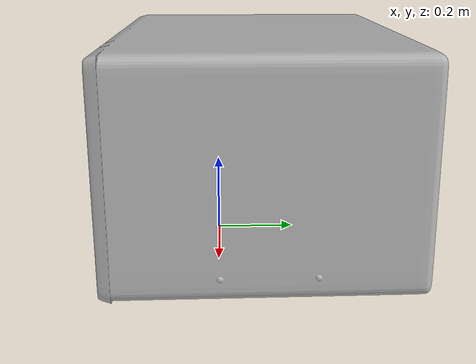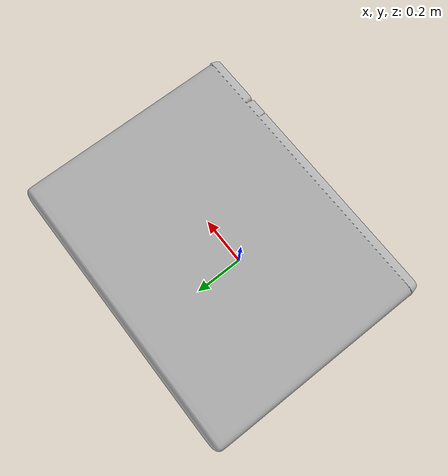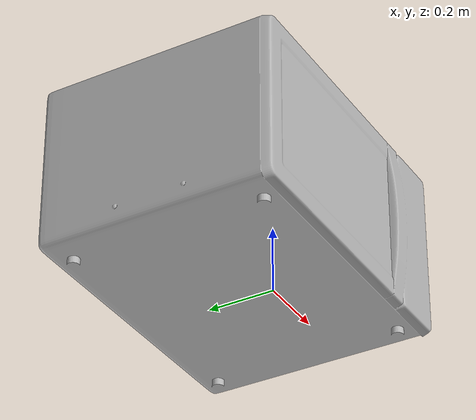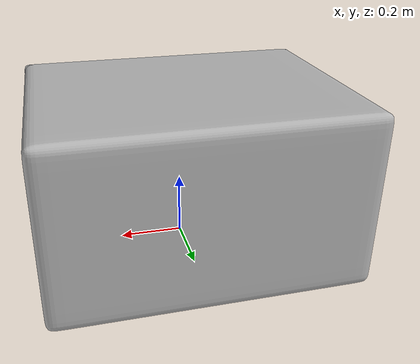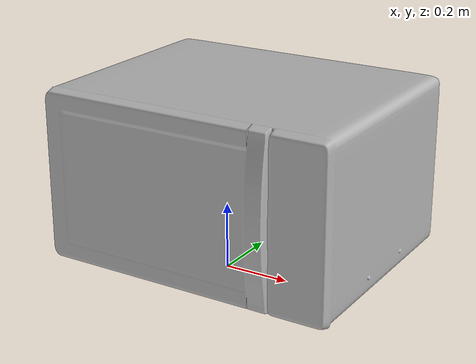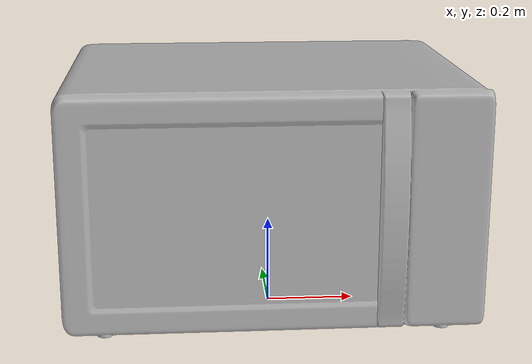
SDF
<?xml version="1.0" ?>
<sdf version="1.7">
  <model name="microwave">
    <static>true</static>
    <link name="microwavelink">
      <collision name="collision">
        <geometry>
          <mesh>
            <uri>model://microwave/meshes/microwave.obj</uri>
            <scale> 0.02 0.02 0.02 </scale>
          </mesh>
        </geometry>
      </collision>
      <visual name="visual">
        <geometry>
          <mesh>
            <uri>model://microwave/meshes/microwave.obj</uri>
            <scale> 0.02 0.02 0.02 </scale>
          </mesh>
        </geometry>
      </visual>
    </link>
  </model>
</sdf>
